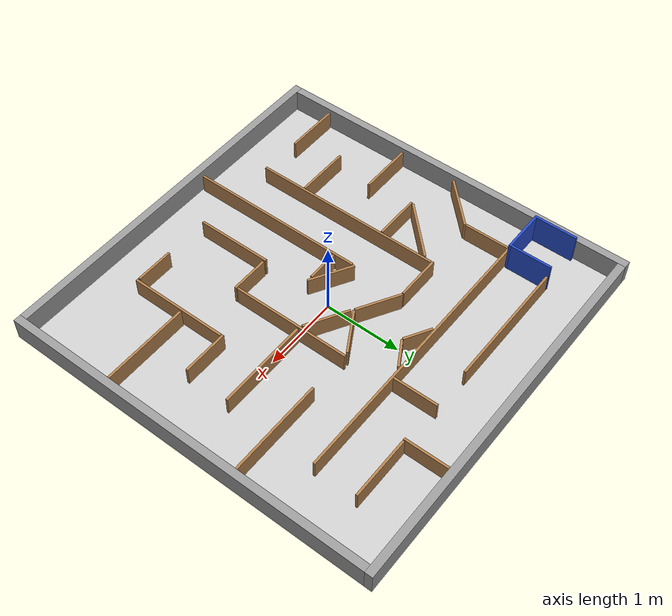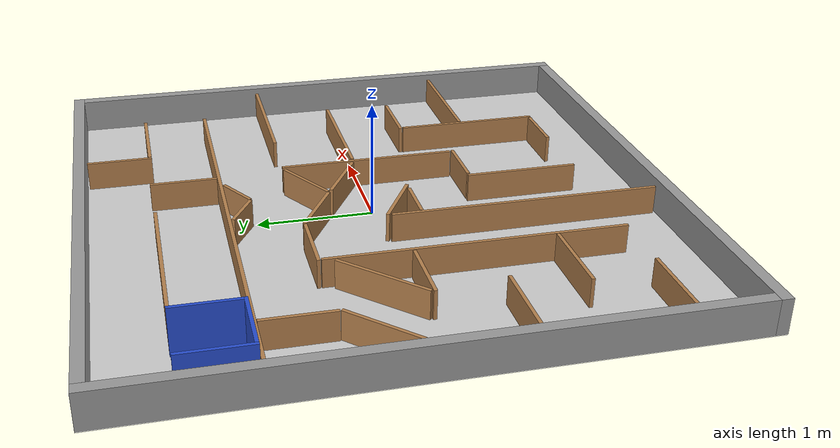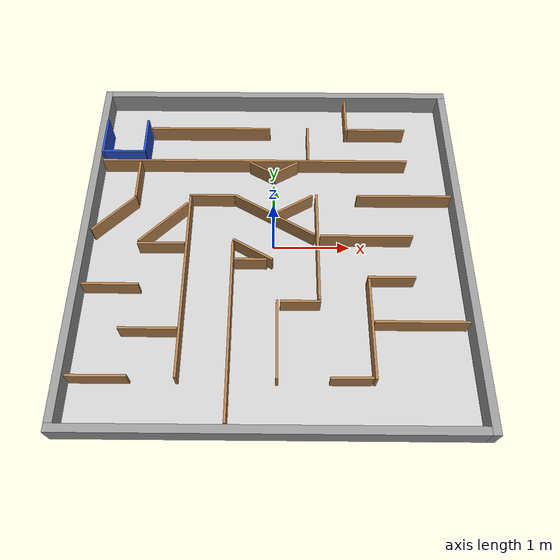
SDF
<sdf version="1.6">
 <world name="default">
  <light name="sun" type="directional">
   <pose>0 0 10 0 -0 0</pose>
   <diffuse>0.8 0.8 0.8 1</diffuse>
   <specular>0.2 0.2 0.2 1</specular>
   <attenuation>
    <range>1000</range>
    <constant>0.9</constant>
    <linear>0.01</linear>
    <quadratic>0.001</quadratic>
   </attenuation>
   <direction>-0.5 0.1 -0.9</direction>
  </light>
  <gravity>0 0 -9.8</gravity>
  <magnetic_field>6e-06 2.3e-05 -4.2e-05</magnetic_field>
  <atmosphere type="adiabatic"/>
  <physics name="default_physics" default="0" type="ode">
   <max_step_size>0.001</max_step_size>
   <real_time_factor>1</real_time_factor>
   <real_time_update_rate>1000</real_time_update_rate>
  </physics>
  <scene><ambient>0.4 0.4 0.4 1</ambient><background>0.7 0.7 0.7 1</background><shadows>1</shadows></scene>
  <spherical_coordinates>
   <surface_model>EARTH_WGS84</surface_model>
   <latitude_deg>0</latitude_deg>
   <longitude_deg>0</longitude_deg>
   <elevation>0</elevation>
   <heading_deg>0</heading_deg>
  </spherical_coordinates>
  <include><uri>model://arena_walls</uri></include>
  <include><uri>model://maze_nav_alt</uri></include>
 </world>
</sdf>

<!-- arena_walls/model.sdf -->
<sdf version='1.6'>
  <model name='arena_walls'>
    <pose frame=''>0 0 0.15 0 0 0</pose>
    <link name='Right_Wall'>
      <collision name='Right_Wall_Collision'>
        <geometry>
          <box>
            <size>4.90 0.10 0.3</size>
          </box>
        </geometry>
        <pose frame=''>0 0 0 0 0 0</pose>
      </collision>
      <visual name='Right_Wall_Visual'>
        <pose frame=''>0 0 0 0 0 0</pose>
        <geometry>
          <box>
            <size>4.90 0.10 0.3</size>
          </box>
        </geometry>
        <material>
          <script>
            <uri>file://media/materials/scripts/gazebo.material</uri>
            <name>Gazebo/Grey</name>
          </script>
          <ambient>1 1 1 1</ambient>
        </material>
      </visual>
      <pose frame=''>0.05 2.45 0 0 0 0</pose>
    </link>
    <link name='Back_Wall'>
      <collision name='Back_Wall_Collision'>
        <geometry>
          <box>
            <size>4.90 0.10 0.3</size>
          </box>
        </geometry>
        <pose frame=''>0 0 0 0 0 0</pose>
      </collision>
      <visual name='Back_Wall_Visual'>
        <pose frame=''>0 0 0 0 0 0</pose>
        <geometry>
          <box>
            <size>4.90 0.10 0.3</size>
          </box>
        </geometry>
        <material>
          <script>
            <uri>file://media/materials/scripts/gazebo.material</uri>
            <name>Gazebo/Grey</name>
          </script>
          <ambient>1 1 1 1</ambient>
        </material>
      </visual>
      <pose frame=''>-2.45 0.05 0 0 0 1.5708</pose>
    </link>
    <link name='Left_Wall'>
      <collision name='Left_Wall_Collision'>
        <geometry>
          <box>
            <size>4.90 0.10 0.3</size>
          </box>
        </geometry>
        <pose frame=''>0 0 0 0 0 0</pose>
      </collision>
      <visual name='Left_Wall_Visual'>
        <pose frame=''>0 0 0 0 0 0</pose>
        <geometry>
          <box>
            <size>4.90 0.10 0.3</size>
          </box>
        </geometry>
        <material>
          <script>
            <uri>file://media/materials/scripts/gazebo.material</uri>
            <name>Gazebo/Grey</name>
          </script>
          <ambient>1 1 1 1</ambient>
        </material>
      </visual>
      <pose frame=''>-0.05 -2.45 0 0 0 0</pose>
    </link>
    <link name='Front_Wall'>
      <collision name='Front_Wall_Collision'>
        <geometry>
          <box>
            <size>4.90 0.10 0.3</size>
          </box>
        </geometry>
        <pose frame=''>0 0 0 0 0 0</pose>
      </collision>
      <visual name='Front_Wall_Visual'>
        <pose frame=''>0 0 0 0 0 0</pose>
        <geometry>
          <box>
            <size>4.90 0.10 0.3</size>
          </box>
        </geometry>
        <material>
          <script>
            <uri>file://media/materials/scripts/gazebo.material</uri>
            <name>Gazebo/Grey</name>
          </script>
          <ambient>1 1 1 1</ambient>
        </material>
      </visual>
      <pose frame=''>2.45 -0.05 0 0 0 1.5708</pose>
    </link>
    <static>1</static>
  </model>
</sdf>

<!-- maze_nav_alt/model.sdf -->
<sdf version="1.4">
<model name="maze_nav_alt">
  <static>true</static>
    <link name="floor">
      <collision name="collision">
        <geometry>
          <plane>
            <normal>0 0 1</normal>
            <size>5.0 5.0</size>
          </plane>
        </geometry>
        <surface>
          <friction>
            <ode>
              <mu>100</mu>
              <mu2>50</mu2>
            </ode>
          </friction>
        </surface>
      </collision>
      <visual name="visual">
        <cast_shadows>false</cast_shadows>
        <geometry>
          <plane>
            <normal>0 0 1</normal>
            <size>5.0 5.0</size>
          </plane>
        </geometry>
        <material>
          <script>
            <uri>model://maze_nav_alt/materials/scripts</uri>
            <uri>model://maze_nav_alt/materials/textures</uri>
            <name>MazeNavAltFloor/Image</name>
          </script>
        </material>
      </visual>
    </link>
    <link name='start_zone'>
      <pose frame=''>-2.07315 1.57160 0.2 0 0 1.571</pose>
      <collision name='Right_Wall_Collision'>
        <geometry>
          <box>
            <size>0.57 0.03 0.4</size>
          </box>
        </geometry>
        <pose frame=''>0 0.2850 0 0 0 0</pose>
      </collision>
      <visual name='Right_Wall_Visual'>
        <pose frame=''>0 0.2850 0 0 0 0</pose>
        <geometry>
          <box>
            <size>0.57 0.03 0.4</size>
          </box>
        </geometry>
        <material>
          <script>
            <uri>file://media/materials/scripts/gazebo.material</uri>
            <name>Gazebo/Blue</name>
          </script>
        </material>
      </visual>
      <collision name='Back_Wall_Collision'>
        <geometry>
          <box>
            <size>0.57 0.03 0.4</size>
          </box>
        </geometry>
        <pose frame=''>-0.27 -0.015 0 0 0 1.571</pose>
      </collision>
      <visual name='Back_Wall_Visual'>
        <pose frame=''>-0.27 -0.015 0 0 0 1.571</pose>
        <geometry>
          <box>
            <size>0.57 0.03 0.4</size>
          </box>
        </geometry>
        <material>
          <script>
            <uri>file://media/materials/scripts/gazebo.material</uri>
            <name>Gazebo/Blue</name>
          </script>
        </material>
      </visual>
      <collision name='Left_Wall_Collision'>
        <geometry>
          <box>
            <size>0.54 0.03 0.4</size>
          </box>
        </geometry>
        <pose frame=''>0.015 -0.285 0 0 0 0</pose>
      </collision>
      <visual name='Left_Wall_Visual'>
        <pose frame=''>0.015 -0.285 0 0 0 0</pose>
        <geometry>
          <box>
            <size>0.54 0.03 0.4</size>
          </box>
        </geometry>
        <material>
          <script>
            <uri>file://media/materials/scripts/gazebo.material</uri>
            <name>Gazebo/Blue</name>
          </script>
        </material>
      </visual>
    </link>
    <link name='wall_00'>
      <pose frame=''>-0.90794 1.84160 0.125 0 0 0</pose>
      <collision name='coll'>
        <geometry>
          <box>
            <size>1.70 0.03 0.25</size>
          </box>
        </geometry>
      </collision>
      <visual name='vis'>
        <geometry>
          <box>
            <size>1.70 0.03 0.25</size>
          </box>
        </geometry>
        <material>
          <script>
            <uri>file://media/materials/scripts/gazebo.material</uri>
            <name>Gazebo/Wood</name>
          </script>
        </material>
      </visual>
    </link>
    <link name='wall_01'>
      <pose frame=''>-0.27063 1.26271 0.125 0 0 0</pose>
      <collision name='coll'>
        <geometry>
          <box>
            <size>4.23 0.03 0.25</size>
          </box>
        </geometry>
      </collision>
      <visual name='vis'>
        <geometry>
          <box>
            <size>4.23 0.03 0.25</size>
          </box>
        </geometry>
        <material>
          <script>
            <uri>file://media/materials/scripts/gazebo.material</uri>
            <name>Gazebo/Wood</name>
          </script>
        </material>
      </visual>
    </link>
    <link name='wall_02'>
      <pose frame=''>0.47706 1.56910 0.125 0 0 1.571</pose>
      <collision name='coll'>
        <geometry>
          <box>
            <size>0.575 0.03 0.25</size>
          </box>
        </geometry>
      </collision>
      <visual name='vis'>
        <geometry>
          <box>
            <size>0.575 0.03 0.25</size>
          </box>
        </geometry>
        <material>
          <script>
            <uri>file://media/materials/scripts/gazebo.material</uri>
            <name>Gazebo/Wood</name>
          </script>
        </material>
      </visual>
    </link>
    <link name='wall_03'>
      <pose frame=''>1.03136 2.09759 0.125 0 0 1.571</pose>
      <collision name='coll'>
        <geometry>
          <box>
            <size>0.57 0.03 0.25</size>
          </box>
        </geometry>
      </collision>
      <visual name='vis'>
        <geometry>
          <box>
            <size>0.57 0.03 0.25</size>
          </box>
        </geometry>
        <material>
          <script>
            <uri>file://media/materials/scripts/gazebo.material</uri>
            <name>Gazebo/Wood</name>
          </script>
        </material>
      </visual>
    </link>
    <link name='wall_04'>
      <pose frame=''>1.46037 1.82759 0.125 0 0 0</pose>
      <collision name='coll'>
        <geometry>
          <box>
            <size>0.81 0.03 0.25</size>
          </box>
        </geometry>
      </collision>
      <visual name='vis'>
        <geometry>
          <box>
            <size>0.81 0.03 0.25</size>
          </box>
        </geometry>
        <material>
          <script>
            <uri>file://media/materials/scripts/gazebo.material</uri>
            <name>Gazebo/Wood</name>
          </script>
        </material>
      </visual>
    </link>
    <link name='wall_06'>
      <pose frame=''>0.16822 1.14092 0.125 0 0 0.524</pose>
      <collision name='coll'>
        <geometry>
          <box>
            <size>0.37 0.03 0.25</size>
          </box>
        </geometry>
      </collision>
      <visual name='vis'>
        <geometry>
          <box>
            <size>0.37 0.03 0.25</size>
          </box>
        </geometry>
        <material>
          <script>
            <uri>file://media/materials/scripts/gazebo.material</uri>
            <name>Gazebo/Wood</name>
          </script>
        </material>
      </visual>
    </link>
    <link name='wall_07'>
      <pose frame=''>-0.16822 1.14092 0.125 0 0 -0.524</pose>
      <collision name='coll'>
        <geometry>
          <box>
            <size>0.37 0.03 0.25</size>
          </box>
        </geometry>
      </collision>
      <visual name='vis'>
        <geometry>
          <box>
            <size>0.37 0.03 0.25</size>
          </box>
        </geometry>
        <material>
          <script>
            <uri>file://media/materials/scripts/gazebo.material</uri>
            <name>Gazebo/Wood</name>
          </script>
        </material>
      </visual>
    </link>
    <link name='wall_08'>
      <pose frame=''>-1.85618 0.94927 0.125 0 0 0</pose>
      <collision name='coll'>
        <geometry>
          <box>
            <size>0.03 0.59 0.25</size>
          </box>
        </geometry>
      </collision>
      <visual name='vis'>
        <geometry>
          <box>
            <size>0.03 0.59 0.25</size>
          </box>
        </geometry>
        <material>
          <script>
            <uri>file://media/materials/scripts/gazebo.material</uri>
            <name>Gazebo/Wood</name>
          </script>
        </material>
      </visual>
    </link>
    <link name='wall_09'>
      <pose frame=''>-2.11341 0.37776 0.125 0 0 0.786</pose>
      <collision name='coll'>
        <geometry>
          <box>
            <size>0.74 0.03 0.25</size>
          </box>
        </geometry>
      </collision>
      <visual name='vis'>
        <geometry>
          <box>
            <size>0.74 0.03 0.25</size>
          </box>
        </geometry>
        <material>
          <script>
            <uri>file://media/materials/scripts/gazebo.material</uri>
            <name>Gazebo/Wood</name>
          </script>
        </material>
      </visual>
    </link>
    <link name='wall_0A'>
      <pose frame=''>-1.44489 0.24998 0.125 0 0 0.786</pose>
      <collision name='coll'>
        <geometry>
          <box>
            <size>0.84 0.03 0.25</size>
          </box>
        </geometry>
      </collision>
      <visual name='vis'>
        <geometry>
          <box>
            <size>0.84 0.03 0.25</size>
          </box>
        </geometry>
        <material>
          <script>
            <uri>file://media/materials/scripts/gazebo.material</uri>
            <name>Gazebo/Wood</name>
          </script>
        </material>
      </visual>
    </link>
    <link name='wall_0B'>
      <pose frame=''>-1.11688 -0.60361 0.125 0 0 0</pose>
      <collision name='coll'>
        <geometry>
          <box>
            <size>0.03 2.51 0.25</size>
          </box>
        </geometry>
      </collision>
      <visual name='vis'>
        <geometry>
          <box>
            <size>0.03 2.51 0.25</size>
          </box>
        </geometry>
        <material>
          <script>
            <uri>file://media/materials/scripts/gazebo.material</uri>
            <name>Gazebo/Wood</name>
          </script>
        </material>
      </visual>
    </link>
    <link name='wall_0C'>
      <pose frame=''>-0.83188 0.67462 0.125 0 0 0</pose>
      <collision name='coll'>
        <geometry>
          <box>
            <size>0.60 0.03 0.25</size>
          </box>
        </geometry>
      </collision>
      <visual name='vis'>
        <geometry>
          <box>
            <size>0.60 0.03 0.25</size>
          </box>
        </geometry>
        <material>
          <script>
            <uri>file://media/materials/scripts/gazebo.material</uri>
            <name>Gazebo/Wood</name>
          </script>
        </material>
      </visual>
    </link>
    <link name='wall_0D'>
      <pose frame=''>-0.26349 0.52913 0.125 0 0 -0.524</pose>
      <collision name='coll'>
        <geometry>
          <box>
            <size>0.59 0.03 0.25</size>
          </box>
        </geometry>
      </collision>
      <visual name='vis'>
        <geometry>
          <box>
            <size>0.59 0.03 0.25</size>
          </box>
        </geometry>
        <material>
          <script>
            <uri>file://media/materials/scripts/gazebo.material</uri>
            <name>Gazebo/Wood</name>
          </script>
        </material>
      </visual>
    </link>
    <link name='wall_0E'>
      <pose frame=''>0.26349 0.52913 0.125 0 0 0.524</pose>
      <collision name='coll'>
        <geometry>
          <box>
            <size>0.59 0.03 0.25</size>
          </box>
        </geometry>
      </collision>
      <visual name='vis'>
        <geometry>
          <box>
            <size>0.59 0.03 0.25</size>
          </box>
        </geometry>
        <material>
          <script>
            <uri>file://media/materials/scripts/gazebo.material</uri>
            <name>Gazebo/Wood</name>
          </script>
        </material>
      </visual>
    </link>
    <link name='wall_0F'>
      <pose frame=''>1.75188 0.67462 0.125 0 0 0</pose>
      <collision name='coll'>
        <geometry>
          <box>
            <size>1.27 0.03 0.25</size>
          </box>
        </geometry>
      </collision>
      <visual name='vis'>
        <geometry>
          <box>
            <size>1.27 0.03 0.25</size>
          </box>
        </geometry>
        <material>
          <script>
            <uri>file://media/materials/scripts/gazebo.material</uri>
            <name>Gazebo/Wood</name>
          </script>
        </material>
      </visual>
    </link>
    <link name='wall_15'>
      <pose frame=''>-1.44748 -0.07483 0.125 0 0 0</pose>
      <collision name='coll'>
        <geometry>
          <box>
            <size>0.61 0.03 0.25</size>
          </box>
        </geometry>
      </collision>
      <visual name='vis'>
        <geometry>
          <box>
            <size>0.61 0.03 0.25</size>
          </box>
        </geometry>
        <material>
          <script>
            <uri>file://media/materials/scripts/gazebo.material</uri>
            <name>Gazebo/Wood</name>
          </script>
        </material>
      </visual>
    </link>
    <link name='wall_17'>
      <pose frame=''>-2.02647 -0.66676 0.125 0 0 0</pose>
      <collision name='coll'>
        <geometry>
          <box>
            <size>0.715 0.03 0.25</size>
          </box>
        </geometry>
      </collision>
      <visual name='vis'>
        <geometry>
          <box>
            <size>0.715 0.03 0.25</size>
          </box>
        </geometry>
        <material>
          <script>
            <uri>file://media/materials/scripts/gazebo.material</uri>
            <name>Gazebo/Wood</name>
          </script>
        </material>
      </visual>
    </link>
    <link name='wall_18'>
      <pose frame=''>-1.4956 -1.25384 0.125 0 0 0</pose>
      <collision name='coll'>
        <geometry>
          <box>
            <size>0.715 0.03 0.25</size>
          </box>
        </geometry>
      </collision>
      <visual name='vis'>
        <geometry>
          <box>
            <size>0.715 0.03 0.25</size>
          </box>
        </geometry>
        <material>
          <script>
            <uri>file://media/materials/scripts/gazebo.material</uri>
            <name>Gazebo/Wood</name>
          </script>
        </material>
      </visual>
    </link>
    <link name='wall_19'>
      <pose frame=''>-2.02647 -1.84361 0.125 0 0 0</pose>
      <collision name='coll'>
        <geometry>
          <box>
            <size>0.715 0.03 0.25</size>
          </box>
        </geometry>
      </collision>
      <visual name='vis'>
        <geometry>
          <box>
            <size>0.715 0.03 0.25</size>
          </box>
        </geometry>
        <material>
          <script>
            <uri>file://media/materials/scripts/gazebo.material</uri>
            <name>Gazebo/Wood</name>
          </script>
        </material>
      </visual>
    </link>
    <link name='wall_1A'>
      <pose frame=''>1.48421 -0.55108 0.125 0 0 0</pose>
      <collision name='coll'>
        <geometry>
          <box>
            <size>0.60 0.03 0.25</size>
          </box>
        </geometry>
      </collision>
      <visual name='vis'>
        <geometry>
          <box>
            <size>0.60 0.03 0.25</size>
          </box>
        </geometry>
        <material>
          <script>
            <uri>file://media/materials/scripts/gazebo.material</uri>
            <name>Gazebo/Wood</name>
          </script>
        </material>
      </visual>
    </link>
    <link name='wall_1B'>
      <pose frame=''>0.285 0.205 0.125 0 0 -0.524</pose>
      <collision name='coll'>
        <geometry>
          <box>
            <size>0.59 0.03 0.25</size>
          </box>
        </geometry>
      </collision>
      <visual name='vis'>
        <geometry>
          <box>
            <size>0.59 0.03 0.25</size>
          </box>
        </geometry>
        <material>
          <script>
            <uri>file://media/materials/scripts/gazebo.material</uri>
            <name>Gazebo/Wood</name>
          </script>
        </material>
      </visual>
    </link>
    <link name='wall_1C'>
      <pose frame=''>1.2072 0.045 0.125 0 0 0</pose>
      <collision name='coll'>
        <geometry>
          <box>
            <size>1.2 0.03 0.25</size>
          </box>
        </geometry>
      </collision>
      <visual name='vis'>
        <geometry>
          <box>
            <size>1.2 0.03 0.25</size>
          </box>
        </geometry>
        <material>
          <script>
            <uri>file://media/materials/scripts/gazebo.material</uri>
            <name>Gazebo/Wood</name>
          </script>
        </material>
      </visual>
    </link>
    <link name='wall_1D'>
      <pose frame=''>0.57375 -0.08538 0.125 0 0 0</pose>
      <collision name='coll'>
        <geometry>
          <box>
            <size>0.03 1.55 0.25</size>
          </box>
        </geometry>
      </collision>
      <visual name='vis'>
        <geometry>
          <box>
            <size>0.03 1.55 0.25</size>
          </box>
        </geometry>
        <material>
          <script>
            <uri>file://media/materials/scripts/gazebo.material</uri>
            <name>Gazebo/Wood</name>
          </script>
        </material>
      </visual>
    </link>
    <link name='wall_1E'>
      <pose frame=''>0.05343 -1.37004 0.125 0 0 0</pose>
      <collision name='coll'>
        <geometry>
          <box>
            <size>0.03 0.99 0.25</size>
          </box>
        </geometry>
      </collision>
      <visual name='vis'>
        <geometry>
          <box>
            <size>0.03 0.99 0.25</size>
          </box>
        </geometry>
        <material>
          <script>
            <uri>file://media/materials/scripts/gazebo.material</uri>
            <name>Gazebo/Wood</name>
          </script>
        </material>
      </visual>
    </link>
    <link name='wall_1F'>
      <pose frame=''>0.91875 -1.85004 0.125 0 0 0</pose>
      <collision name='coll'>
        <geometry>
          <box>
            <size>0.5 0.03 0.25</size>
          </box>
        </geometry>
      </collision>
      <visual name='vis'>
        <geometry>
          <box>
            <size>0.5 0.03 0.25</size>
          </box>
        </geometry>
        <material>
          <script>
            <uri>file://media/materials/scripts/gazebo.material</uri>
            <name>Gazebo/Wood</name>
          </script>
        </material>
      </visual>
    </link>
    <link name='wall_20'>
      <pose frame=''>1.19921 -1.22004 0.125 0 0 0</pose>
      <collision name='coll'>
        <geometry>
          <box>
            <size>0.03 1.29 0.25</size>
          </box>
        </geometry>
      </collision>
      <visual name='vis'>
        <geometry>
          <box>
            <size>0.03 1.29 0.25</size>
          </box>
        </geometry>
        <material>
          <script>
            <uri>file://media/materials/scripts/gazebo.material</uri>
            <name>Gazebo/Wood</name>
          </script>
        </material>
      </visual>
    </link>
    <link name='wall_21'>
      <pose frame=''>1.80439 -1.15064 0.125 0 0 0</pose>
      <collision name='coll'>
        <geometry>
          <box>
            <size>1.15 0.03 0.25</size>
          </box>
        </geometry>
      </collision>
      <visual name='vis'>
        <geometry>
          <box>
            <size>1.15 0.03 0.25</size>
          </box>
        </geometry>
        <material>
          <script>
            <uri>file://media/materials/scripts/gazebo.material</uri>
            <name>Gazebo/Wood</name>
          </script>
        </material>
      </visual>
    </link>
    <link name='wall_22'>
      <pose frame=''>-0.52255 -1.21097 0.125 0 0 0</pose>
      <collision name='coll'>
        <geometry>
          <box>
            <size>0.03 2.33 0.25</size>
          </box>
        </geometry>
      </collision>
      <visual name='vis'>
        <geometry>
          <box>
            <size>0.03 2.33 0.25</size>
          </box>
        </geometry>
        <material>
          <script>
            <uri>file://media/materials/scripts/gazebo.material</uri>
            <name>Gazebo/Wood</name>
          </script>
        </material>
      </visual>
    </link>
    <link name='wall_23'>
      <pose frame=''>-0.29133 -0.30598 0.125 0 0 0</pose>
      <collision name='coll'>
        <geometry>
          <box>
            <size>0.42 0.03 0.25</size>
          </box>
        </geometry>
      </collision>
      <visual name='vis'>
        <geometry>
          <box>
            <size>0.42 0.03 0.25</size>
          </box>
        </geometry>
        <material>
          <script>
            <uri>file://media/materials/scripts/gazebo.material</uri>
            <name>Gazebo/Wood</name>
          </script>
        </material>
      </visual>
    </link>
    <link name='wall_24'>
      <pose frame=''>-0.26349 -0.16049 0.125 0 0 -0.524</pose>
      <collision name='coll'>
        <geometry>
          <box>
            <size>0.59 0.03 0.25</size>
          </box>
        </geometry>
      </collision>
      <visual name='vis'>
        <geometry>
          <box>
            <size>0.59 0.03 0.25</size>
          </box>
        </geometry>
        <material>
          <script>
            <uri>file://media/materials/scripts/gazebo.material</uri>
            <name>Gazebo/Wood</name>
          </script>
        </material>
      </visual>
    </link>
    <link name='wall_25'>
      <pose frame=''>0.33875 -0.88862 0.125 0 0 0</pose>
      <collision name='coll'>
        <geometry>
          <box>
            <size>0.5 0.03 0.25</size>
          </box>
        </geometry>
      </collision>
      <visual name='vis'>
        <geometry>
          <box>
            <size>0.5 0.03 0.25</size>
          </box>
        </geometry>
        <material>
          <script>
            <uri>file://media/materials/scripts/gazebo.material</uri>
            <name>Gazebo/Wood</name>
          </script>
        </material>
      </visual>
    </link>
  </model>
</sdf>
